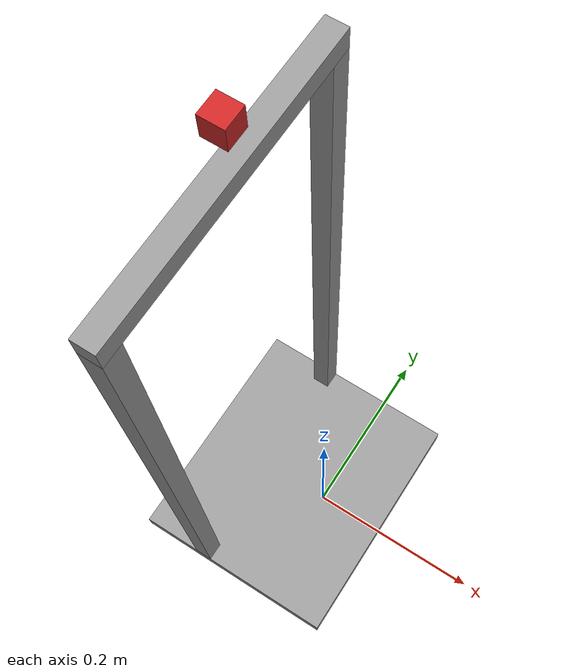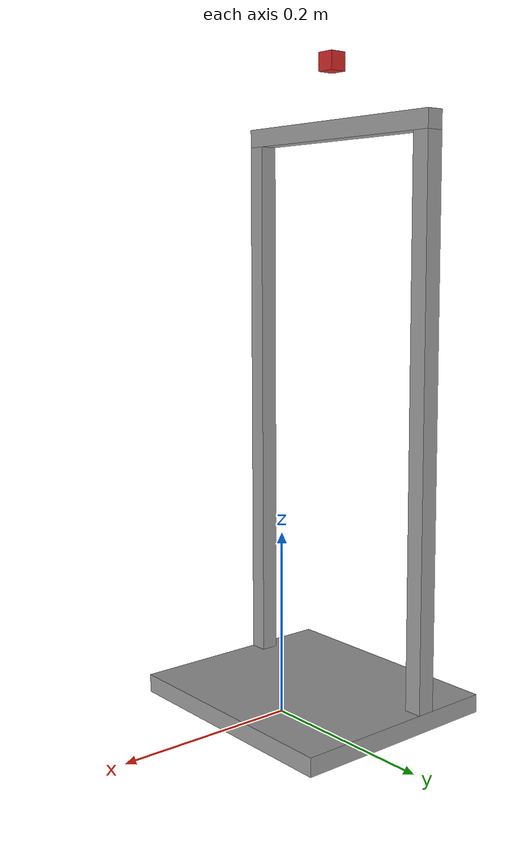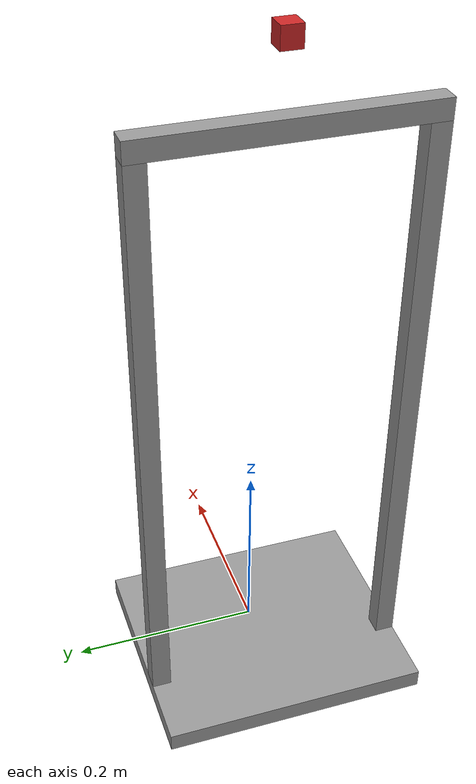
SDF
<?xml version='1.0'?>
<sdf version="1.4">
  <model name="EspressoFrameTower">
    <link name="body_link">
      <pose>0 0 0 0 0 0</pose>
      <inertial>
        <pose>-0.04 0 0 0 0 0</pose>
        <mass>1.0</mass>
        <inertia>
          <ixx>0.0065</ixx>
          <ixy>0.0</ixy>
          <ixz>0.0</ixz>
          <iyy>0.0048</iyy>
          <iyz>0.0</iyz>
          <izz>0.011</izz>
        </inertia>
      </inertial>
      <collision name="collision">
        <pose>-0.04 0 0.01 0 0 0</pose>
        <geometry>
          <box>
            <size>0.240 0.280 0.02</size>
          </box>
        </geometry>
      </collision>
      <visual name="visual">
        <pose>-0.04 0 0.01 0 0 0</pose>
        <geometry>
          <box>
            <size>0.240 0.280 0.02</size>
          </box>
        </geometry>
        <material>
          <script>
            <uri>file://media/materials/scripts/gazebo.material</uri>
            <name>Gazebo/Grey</name>
          </script>
        </material>
      </visual>
      <visual name="visual_left">
        <pose>-0.08 0.13 0.32 0 0 0</pose>
        <geometry>
          <box>
            <size>0.02 0.02 0.6</size>
          </box>
        </geometry>
        <material>
          <script>
            <uri>file://media/materials/scripts/gazebo.material</uri>
            <name>Gazebo/Gray</name>
          </script>
        </material>
      </visual>
      <visual name="visual_right">
        <pose>-0.08 -0.13 0.32 0 0 0</pose>
        <geometry>
          <box>
            <size>0.02 0.02 0.6</size>
          </box>
        </geometry>
        <material>
          <script>
            <uri>file://media/materials/scripts/gazebo.material</uri>
            <name>Gazebo/Gray</name>
          </script>
        </material>
      </visual>
      <visual name="visual_top">
        <pose>-0.08 0 0.63 0 0 0</pose>
        <geometry>
          <box>
            <size>0.02 0.28 0.02</size>
          </box>
        </geometry>
        <material>
          <script>
            <uri>file://media/materials/scripts/gazebo.material</uri>
            <name>Gazebo/Gray</name>
          </script>
        </material>
      </visual>
    </link>

    <joint name='top_camera_joint' type='fixed'>
      <parent>body_link</parent>
      <child>top_camera_link</child>
    </joint>

    <link name="top_camera_link">
      <pose>-0.07 0 0.7 0 0 0</pose>
      <visual name="visual1">
        <geometry>
          <box>
            <size>0.02 0.02 0.02</size>
          </box>
        </geometry>
        <material>
          <script>
            <uri>file://media/materials/scripts/gazebo.material</uri>
            <name>Gazebo/Red</name>
          </script>
        </material>
      </visual>
      <sensor type="camera" name="camera1">
        <visualize>true</visualize>
        <update_rate>10.0</update_rate>
        <camera name="top">
          <horizontal_fov>2.0</horizontal_fov>
          <image>
            <width>320</width>
            <height>240</height>
            <format>R8G8B8</format>
          </image>
          <clip>
            <near>0.02</near>
            <far>30</far>
          </clip>
          <noise>
            <type>gaussian</type>
            <mean>0.0</mean>
            <stddev>0.007</stddev>
          </noise>
        </camera>
        <plugin name="top_camera_controller" filename="libgazebo_ros_camera.so">
          <alwaysOn>true</alwaysOn>
          <updateRate>0.0</updateRate>
          <cameraName>top_camera</cameraName>
          <imageTopicName>/device/top_camera/image_raw</imageTopicName>
          <cameraInfoTopicName>/device/top_camera/camera_info</cameraInfoTopicName>
          <frameName>top_camera_optical_link</frameName>
          <hackBaseline>0.0</hackBaseline>
          <distortionK1>0.0</distortionK1>
          <distortionK2>0.0</distortionK2>
          <distortionK3>0.0</distortionK3>
          <distortionT1>0.0</distortionT1>
          <distortionT2>0.0</distortionT2>
        </plugin>
      </sensor>
    </link>
  </model>
</sdf>
